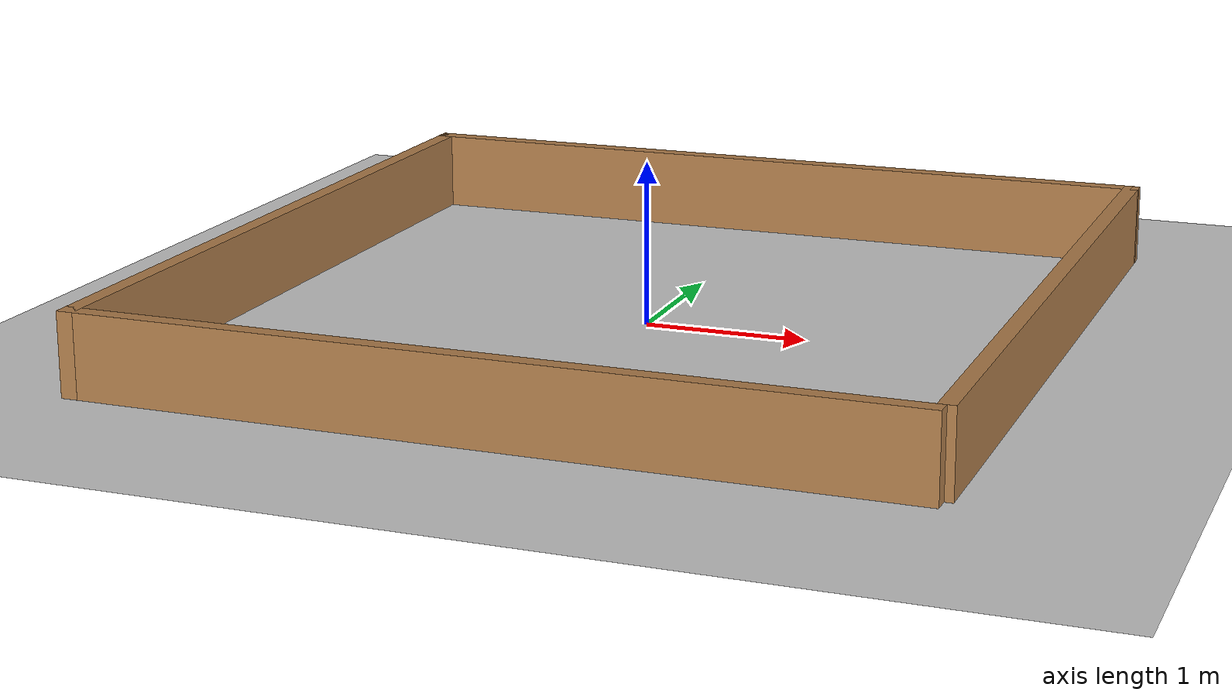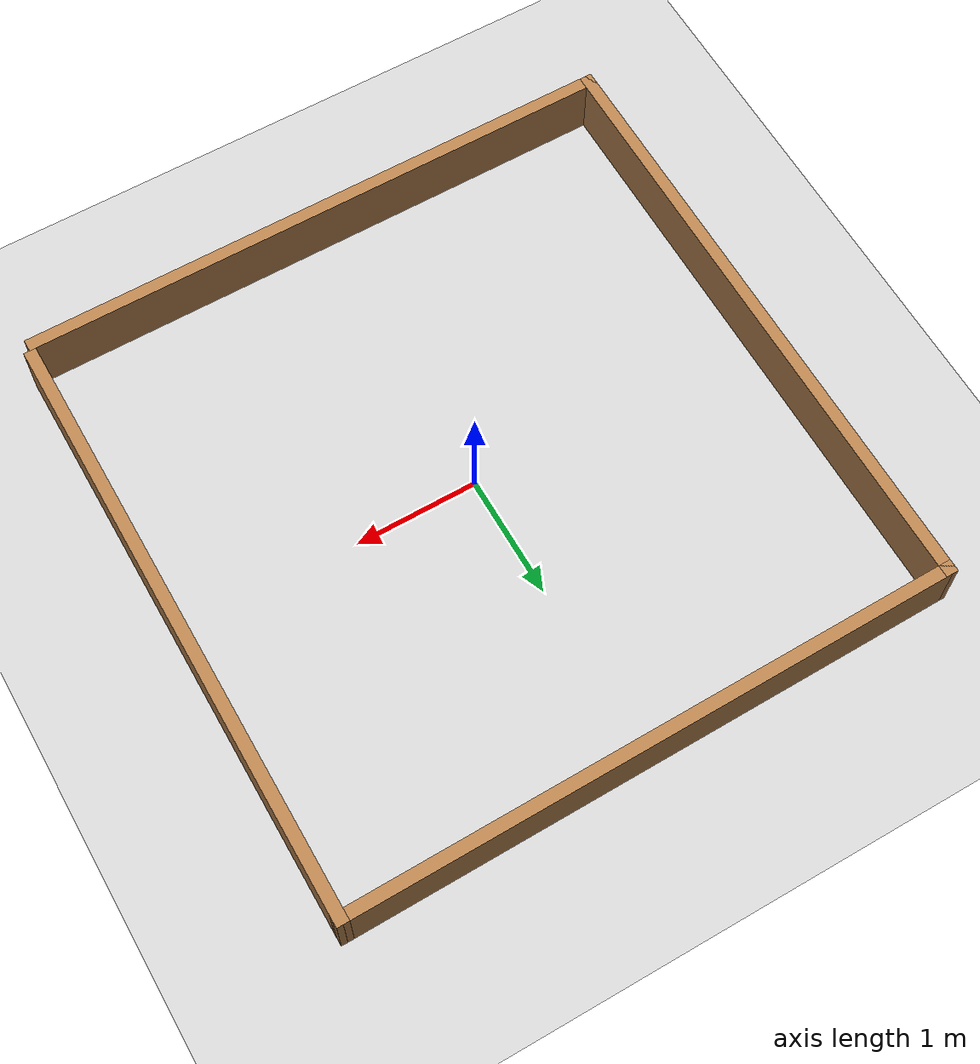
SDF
<sdf version='1.4'>
  <world name='default'>
    <!-- A global light source -->
    <include>
      <uri>model://sun</uri>
    </include>

    <!-- A ground plane -->
    <include>
      <uri>model://ground_plane</uri>
    </include>

    <physics type="ode">
      <real_time_update_rate>1000.0</real_time_update_rate>
      <max_step_size>0.001</max_step_size>
      <real_time_factor>1</real_time_factor>
      <ode>
        <solver>
          <type>quick</type>
          <iters>150</iters>
          <precon_iters>0</precon_iters>
          <sor>1.400000</sor>
          <use_dynamic_moi_rescaling>1</use_dynamic_moi_rescaling>
        </solver>
        <constraints>
          <cfm>0.00001</cfm>
          <erp>0.2</erp>
          <contact_max_correcting_vel>2000.000000</contact_max_correcting_vel>
          <contact_surface_layer>0.01000</contact_surface_layer>
        </constraints>
      </ode>
    </physics>

    <include>
      <uri>model://obstacle</uri>
    </include>

    <scene>
      <ambient>0.4 0.4 0.4 1</ambient>
      <background>0.7 0.7 0.7 1</background>
      <shadows>true</shadows>
    </scene>

  </world>
</sdf>

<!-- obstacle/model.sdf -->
<sdf version='1.6'>
  <model name='test'>
    <pose frame=''>0 0.025253 0 0 -0 0</pose>
    <link name='Wall_10'>
      <collision name='Wall_10_Collision'>
        <geometry>
          <box>
            <size>4.95 0.1 0.5</size>
          </box>
        </geometry>
        <pose frame=''>0 0 0.25 0 -0 0</pose>
      </collision>
      <visual name='Wall_10_Visual'>
        <pose frame=''>0 0 0.25 0 -0 0</pose>
        <geometry>
          <box>
            <size>4.95 0.1 0.5</size>
          </box>
        </geometry>
        <material>
          <script>
            <uri>file://media/materials/scripts/gazebo.material</uri>
            <name>Gazebo/Wood</name>
          </script>
          <ambient>1 1 1 1</ambient>
        </material>
        <meta>
          <layer>0</layer>
        </meta>
      </visual>
      <pose frame=''>2.45 0.049747 0 0 -0 -1.5708</pose>
    </link>
    <link name='Wall_4'>
      <collision name='Wall_4_Collision'>
        <geometry>
          <box>
            <size>5 0.1 0.5</size>
          </box>
        </geometry>
        <pose frame=''>0 0 0.25 0 -0 0</pose>
      </collision>
      <visual name='Wall_4_Visual'>
        <pose frame=''>0 0 0.25 0 -0 0</pose>
        <geometry>
          <box>
            <size>5 0.1 0.5</size>
          </box>
        </geometry>
        <material>
          <script>
            <uri>file://media/materials/scripts/gazebo.material</uri>
            <name>Gazebo/Wood</name>
          </script>
          <ambient>0.996078 0.47451 0.0196078 1</ambient>
        </material>
        <meta>
          <layer>0</layer>
        </meta>
      </visual>
      <pose frame=''>0 2.44975 0 0 -0 -3.13139</pose>
    </link>
    <link name='Wall_6'>
      <collision name='Wall_6_Collision'>
        <geometry>
          <box>
            <size>5 0.1 0.5</size>
          </box>
        </geometry>
        <pose frame=''>0 0 0.25 0 -0 0</pose>
      </collision>
      <visual name='Wall_6_Visual'>
        <pose frame=''>0 0 0.25 0 -0 0</pose>
        <geometry>
          <box>
            <size>5 0.1 0.5</size>
          </box>
        </geometry>
        <material>
          <script>
            <uri>file://media/materials/scripts/gazebo.material</uri>
            <name>Gazebo/Wood</name>
          </script>
          <ambient>1 1 1 1</ambient>
        </material>
        <meta>
          <layer>0</layer>
        </meta>
      </visual>
      <pose frame=''>-2.45 -0.025253 0 0 -0 -1.5708</pose>
    </link>
    <link name='Wall_7'>
      <collision name='Wall_7_Collision'>
        <geometry>
          <box>
            <size>4.95 0.1 0.5</size>
          </box>
        </geometry>
        <pose frame=''>0 0 0.25 0 -0 0</pose>
      </collision>
      <visual name='Wall_7_Visual'>
        <pose frame=''>0 0 0.25 0 -0 0</pose>
        <geometry>
          <box>
            <size>4.95 0.1 0.5</size>
          </box>
        </geometry>
        <material>
          <script>
            <uri>file://media/materials/scripts/gazebo.material</uri>
            <name>Gazebo/Wood</name>
          </script>
          <ambient>1 1 1 1</ambient>
        </material>
        <meta>
          <layer>0</layer>
        </meta>
      </visual>
      <pose frame=''>-0.025 -2.47525 0 0 -0 0</pose>
    </link>
    <static>1</static>
  </model>
</sdf>
